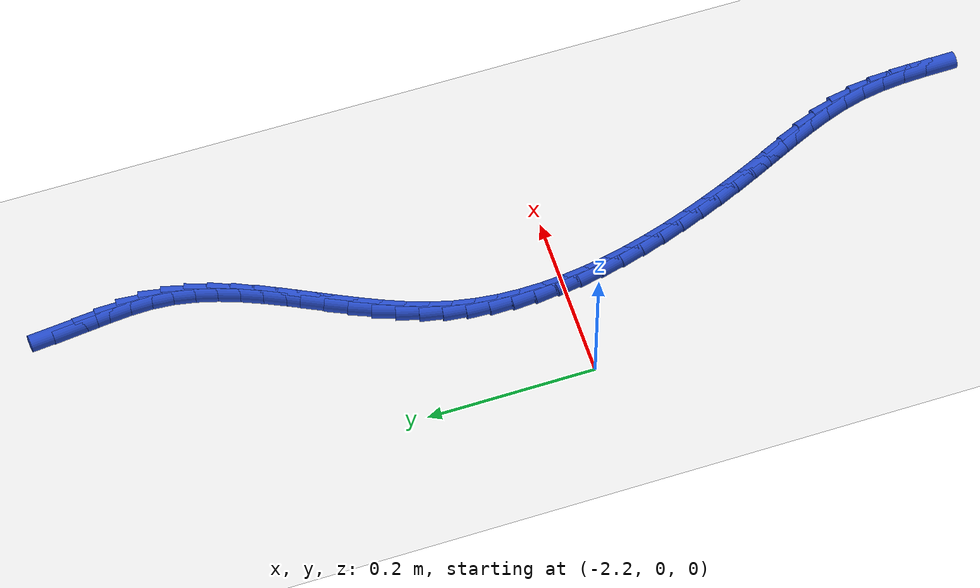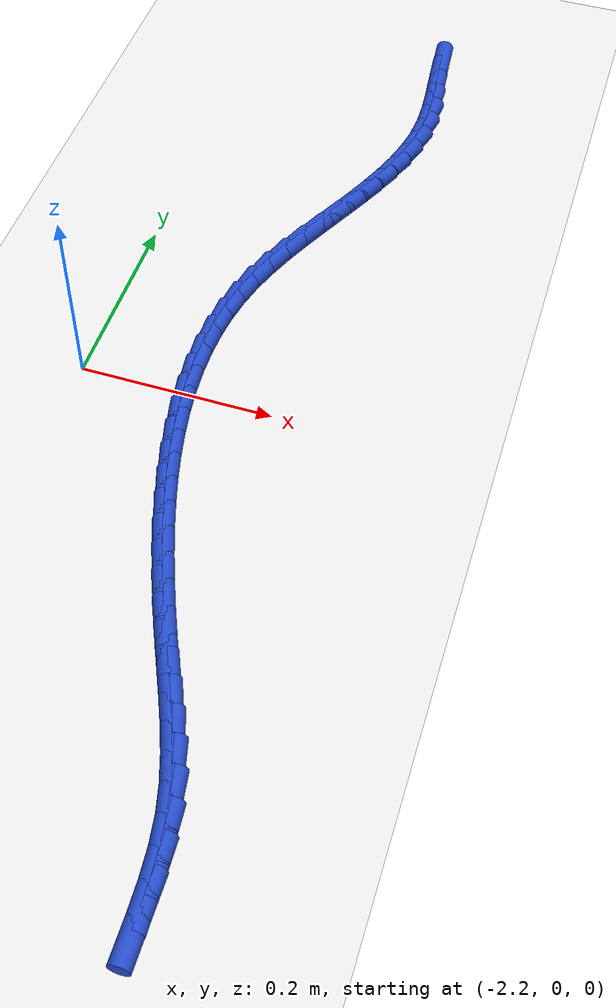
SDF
<sdf version="1.6">
 <world name="default">
  <model name="ground_plane">
   <static>1</static>
   <link name="link">
    <collision name="collision">
     <geometry><plane><normal>0 0 1</normal><size>100 100</size></plane></geometry>
     <surface><friction><ode><mu>100</mu><mu2>50</mu2></ode></friction></surface>
    </collision>
    <visual name="visual">
     <cast_shadows>0</cast_shadows>
     <geometry><plane><normal>0 0 1</normal><size>100 100</size></plane></geometry>
     <material>
      <script><uri>file://media/materials/scripts/gazebo.material</uri><name>Gazebo/WhiteGlow</name></script>
     </material>
    </visual>
   </link>
  </model>
  <model name="line">
   <link name="link_105">
    <pose>-1.972126575137175 0.5634461739848984 0.01 0 1.57 -1.4766376823583705</pose>
    <collision name="collision">
     <geometry><cylinder><radius>0.01</radius><length>0.08</length></cylinder></geometry>
    </collision>
    <visual name="visual">
     <material>
      <script><name>Gazebo/Blue</name><uri>file://media/materials/scripts/gazebo.material</uri></script>
     </material>
     <geometry><cylinder><radius>0.01</radius><length>0.08</length></cylinder></geometry>
    </visual>
   </link>
   <link name="link_106">
    <pose>-1.969586155695155 0.536545751230666 0.01 0 1.57 -1.463341233029052</pose>
    <collision name="collision">
     <geometry><cylinder><radius>0.01</radius><length>0.08</length></cylinder></geometry>
    </collision>
    <visual name="visual">
     <material>
      <script><name>Gazebo/Blue</name><uri>file://media/materials/scripts/gazebo.material</uri></script>
     </material>
     <geometry><cylinder><radius>0.01</radius><length>0.08</length></cylinder></geometry>
    </visual>
   </link>
   <link name="link_107">
    <pose>-1.966704726462525 0.5098338444102422 0.01 0 1.57 -1.4873361292145753</pose>
    <collision name="collision">
     <geometry><cylinder><radius>0.01</radius><length>0.08</length></cylinder></geometry>
    </collision>
    <visual name="visual">
     <material>
      <script><name>Gazebo/Blue</name><uri>file://media/materials/scripts/gazebo.material</uri></script>
     </material>
     <geometry><cylinder><radius>0.01</radius><length>0.08</length></cylinder></geometry>
    </visual>
   </link>
   <link name="link_108">
    <pose>-1.9644908859567793 0.4833697581110783 0.01 0 1.57 -1.5502443384897453</pose>
    <collision name="collision">
     <geometry><cylinder><radius>0.01</radius><length>0.08</length></cylinder></geometry>
    </collision>
    <visual name="visual">
     <material>
      <script><name>Gazebo/Blue</name><uri>file://media/materials/scripts/gazebo.material</uri></script>
     </material>
     <geometry><cylinder><radius>0.01</radius><length>0.08</length></cylinder></geometry>
    </visual>
   </link>
   <link name="link_109">
    <pose>-1.9639532326954114 0.4572127969206257 0.01 0 1.57 1.4909429421851164</pose>
    <collision name="collision">
     <geometry><cylinder><radius>0.01</radius><length>0.08</length></cylinder></geometry>
    </collision>
    <visual name="visual">
     <material>
      <script><name>Gazebo/Blue</name><uri>file://media/materials/scripts/gazebo.material</uri></script>
     </material>
     <geometry><cylinder><radius>0.01</radius><length>0.08</length></cylinder></geometry>
    </visual>
   </link>
   <link name="link_110">
    <pose>-1.966017637361005 0.4314153323083927 0.01 0 1.57 1.3863802636688096</pose>
    <collision name="collision">
     <geometry><cylinder><radius>0.01</radius><length>0.08</length></cylinder></geometry>
    </collision>
    <visual name="visual">
     <material>
      <script><name>Gazebo/Blue</name><uri>file://media/materials/scripts/gazebo.material</uri></script>
     </material>
     <geometry><cylinder><radius>0.01</radius><length>0.08</length></cylinder></geometry>
    </visual>
   </link>
   <link name="link_111">
    <pose>-1.9707661442307725 0.4059590177322481 0.01 0 1.57 1.2988009181703235</pose>
    <collision name="collision">
     <geometry><cylinder><radius>0.01</radius><length>0.08</length></cylinder></geometry>
    </collision>
    <visual name="visual">
     <material>
      <script><name>Gazebo/Blue</name><uri>file://media/materials/scripts/gazebo.material</uri></script>
     </material>
     <geometry><cylinder><radius>0.01</radius><length>0.08</length></cylinder></geometry>
    </visual>
   </link>
   <link name="link_112">
    <pose>-1.9777875989397111 0.380784173471698 0.01 0 1.57 1.2290147500700848</pose>
    <collision name="collision">
     <geometry><cylinder><radius>0.01</radius><length>0.08</length></cylinder></geometry>
    </collision>
    <visual name="visual">
     <material>
      <script><name>Gazebo/Blue</name><uri>file://media/materials/scripts/gazebo.material</uri></script>
     </material>
     <geometry><cylinder><radius>0.01</radius><length>0.08</length></cylinder></geometry>
    </visual>
   </link>
   <link name="link_113">
    <pose>-1.986664649140867 0.3558306003759999 0.01 0 1.57 1.1765179317224823</pose>
    <collision name="collision">
     <geometry><cylinder><radius>0.01</radius><length>0.08</length></cylinder></geometry>
    </collision>
    <visual name="visual">
     <material>
      <script><name>Gazebo/Blue</name><uri>file://media/materials/scripts/gazebo.material</uri></script>
     </material>
     <geometry><cylinder><radius>0.01</radius><length>0.08</length></cylinder></geometry>
    </visual>
   </link>
   <link name="link_114">
    <pose>-1.996979942487287 0.3310380992944109 0.01 0 1.57 1.1403920417455826</pose>
    <collision name="collision">
     <geometry><cylinder><radius>0.01</radius><length>0.08</length></cylinder></geometry>
    </collision>
    <visual name="visual">
     <material>
      <script><name>Gazebo/Blue</name><uri>file://media/materials/scripts/gazebo.material</uri></script>
     </material>
     <geometry><cylinder><radius>0.01</radius><length>0.08</length></cylinder></geometry>
    </visual>
   </link>
   <link name="link_115">
    <pose>-2.0083161266320175 0.30634647107618845 0.01 0 1.57 1.1197458430355571</pose>
    <collision name="collision">
     <geometry><cylinder><radius>0.01</radius><length>0.08</length></cylinder></geometry>
    </collision>
    <visual name="visual">
     <material>
      <script><name>Gazebo/Blue</name><uri>file://media/materials/scripts/gazebo.material</uri></script>
     </material>
     <geometry><cylinder><radius>0.01</radius><length>0.08</length></cylinder></geometry>
    </visual>
   </link>
   <link name="link_116">
    <pose>-2.0202558492281044 0.2816955165705896 0.01 0 1.57 1.1139598028272653</pose>
    <collision name="collision">
     <geometry><cylinder><radius>0.01</radius><length>0.08</length></cylinder></geometry>
    </collision>
    <visual name="visual">
     <material>
      <script><name>Gazebo/Blue</name><uri>file://media/materials/scripts/gazebo.material</uri></script>
     </material>
     <geometry><cylinder><radius>0.01</radius><length>0.08</length></cylinder></geometry>
    </visual>
   </link>
   <link name="link_117">
    <pose>-2.032381757928595 0.25702503662687193 0.01 0 1.57 1.1227955757157324</pose>
    <collision name="collision">
     <geometry><cylinder><radius>0.01</radius><length>0.08</length></cylinder></geometry>
    </collision>
    <visual name="visual">
     <material>
      <script><name>Gazebo/Blue</name><uri>file://media/materials/scripts/gazebo.material</uri></script>
     </material>
     <geometry><cylinder><radius>0.01</radius><length>0.08</length></cylinder></geometry>
    </visual>
   </link>
   <link name="link_118">
    <pose>-2.0442765003865357 0.2322748320942925 0.01 0 1.57 1.146417703029097</pose>
    <collision name="collision">
     <geometry><cylinder><radius>0.01</radius><length>0.08</length></cylinder></geometry>
    </collision>
    <visual name="visual">
     <material>
      <script><name>Gazebo/Blue</name><uri>file://media/materials/scripts/gazebo.material</uri></script>
     </material>
     <geometry><cylinder><radius>0.01</radius><length>0.08</length></cylinder></geometry>
    </visual>
   </link>
   <link name="link_119">
    <pose>-2.055522724254973 0.2073847038221088 0.01 0 1.57 1.1853434662528035</pose>
    <collision name="collision">
     <geometry><cylinder><radius>0.01</radius><length>0.08</length></cylinder></geometry>
    </collision>
    <visual name="visual">
     <material>
      <script><name>Gazebo/Blue</name><uri>file://media/materials/scripts/gazebo.material</uri></script>
     </material>
     <geometry><cylinder><radius>0.01</radius><length>0.08</length></cylinder></geometry>
    </visual>
   </link>
   <link name="link_120">
    <pose>-2.065703077186954 0.1822944526595784 0.01 0 1.57 1.240304687643264</pose>
    <collision name="collision">
     <geometry><cylinder><radius>0.01</radius><length>0.08</length></cylinder></geometry>
    </collision>
    <visual name="visual">
     <material>
      <script><name>Gazebo/Blue</name><uri>file://media/materials/scripts/gazebo.material</uri></script>
     </material>
     <geometry><cylinder><radius>0.01</radius><length>0.08</length></cylinder></geometry>
    </visual>
   </link>
   <link name="link_121">
    <pose>-2.0744002068355236 0.15694387945595775 0.01 0 1.57 1.3112004455252069</pose>
    <collision name="collision">
     <geometry><cylinder><radius>0.01</radius><length>0.08</length></cylinder></geometry>
    </collision>
    <visual name="visual">
     <material>
      <script><name>Gazebo/Blue</name><uri>file://media/materials/scripts/gazebo.material</uri></script>
     </material>
     <geometry><cylinder><radius>0.01</radius><length>0.08</length></cylinder></geometry>
    </visual>
   </link>
   <link name="link_122">
    <pose>-2.0812170602623006 0.13127694017367592 0.01 0 1.57 1.3870124953090317</pose>
    <collision name="collision">
     <geometry><cylinder><radius>0.01</radius><length>0.08</length></cylinder></geometry>
    </collision>
    <visual name="visual">
     <material>
      <script><name>Gazebo/Blue</name><uri>file://media/materials/scripts/gazebo.material</uri></script>
     </material>
     <geometry><cylinder><radius>0.01</radius><length>0.08</length></cylinder></geometry>
    </visual>
   </link>
   <link name="link_123">
    <pose>-2.0860462681362177 0.105296886501343 0.01 0 1.57 1.4588586472775016</pose>
    <collision name="collision">
     <geometry><cylinder><radius>0.01</radius><length>0.08</length></cylinder></geometry>
    </collision>
    <visual name="visual">
     <material>
      <script><name>Gazebo/Blue</name><uri>file://media/materials/scripts/gazebo.material</uri></script>
     </material>
     <geometry><cylinder><radius>0.01</radius><length>0.08</length></cylinder></geometry>
    </visual>
   </link>
   <link name="link_124">
    <pose>-2.088996483141281 0.07905118796361965 0.01 0 1.57 1.5260447786841456</pose>
    <collision name="collision">
     <geometry><cylinder><radius>0.01</radius><length>0.08</length></cylinder></geometry>
    </collision>
    <visual name="visual">
     <material>
      <script><name>Gazebo/Blue</name><uri>file://media/materials/scripts/gazebo.material</uri></script>
     </material>
     <geometry><cylinder><radius>0.01</radius><length>0.08</length></cylinder></geometry>
    </visual>
   </link>
   <link name="link_125">
    <pose>-2.0901815263242196 0.05258837200426572 0.01 0 1.57 -1.5532884285122743</pose>
    <collision name="collision">
     <geometry><cylinder><radius>0.01</radius><length>0.08</length></cylinder></geometry>
    </collision>
    <visual name="visual">
     <material>
      <script><name>Gazebo/Blue</name><uri>file://media/materials/scripts/gazebo.material</uri></script>
     </material>
     <geometry><cylinder><radius>0.01</radius><length>0.08</length></cylinder></geometry>
    </visual>
   </link>
   <link name="link_126">
    <pose>-2.089715218731762 0.025956966067041162 0.01 0 1.57 -1.4960302578766238</pose>
    <collision name="collision">
     <geometry><cylinder><radius>0.01</radius><length>0.08</length></cylinder></geometry>
    </collision>
    <visual name="visual">
     <material>
      <script><name>Gazebo/Blue</name><uri>file://media/materials/scripts/gazebo.material</uri></script>
     </material>
     <geometry><cylinder><radius>0.01</radius><length>0.08</length></cylinder></geometry>
    </visual>
   </link>
   <link name="link_127">
    <pose>-2.0877113814106383 -0.0007945024042941657 0.01 0 1.57 -1.4437012806284384</pose>
    <collision name="collision">
     <geometry><cylinder><radius>0.01</radius><length>0.08</length></cylinder></geometry>
    </collision>
    <visual name="visual">
     <material>
      <script><name>Gazebo/Blue</name><uri>file://media/materials/scripts/gazebo.material</uri></script>
     </material>
     <geometry><cylinder><radius>0.01</radius><length>0.08</length></cylinder></geometry>
    </visual>
   </link>
   <link name="link_128">
    <pose>-2.0842838354075783 -0.02761750596598025 0.01 0 1.57 -1.396127659010064</pose>
    <collision name="collision">
     <geometry><cylinder><radius>0.01</radius><length>0.08</length></cylinder></geometry>
    </collision>
    <visual name="visual">
     <material>
      <script><name>Gazebo/Blue</name><uri>file://media/materials/scripts/gazebo.material</uri></script>
     </material>
     <geometry><cylinder><radius>0.01</radius><length>0.08</length></cylinder></geometry>
    </visual>
   </link>
   <link name="link_129">
    <pose>-2.079546401769311 -0.054463517174257264 0.01 0 1.57 -1.3530730052619449</pose>
    <collision name="collision">
     <geometry><cylinder><radius>0.01</radius><length>0.08</length></cylinder></geometry>
    </collision>
    <visual name="visual">
     <material>
      <script><name>Gazebo/Blue</name><uri>file://media/materials/scripts/gazebo.material</uri></script>
     </material>
     <geometry><cylinder><radius>0.01</radius><length>0.08</length></cylinder></geometry>
    </visual>
   </link>
   <link name="link_130">
    <pose>-2.0736129015425653 -0.08128400858536523 0.01 0 1.57 -1.3142697443693327</pose>
    <collision name="collision">
     <geometry><cylinder><radius>0.01</radius><length>0.08</length></cylinder></geometry>
    </collision>
    <visual name="visual">
     <material>
      <script><name>Gazebo/Blue</name><uri>file://media/materials/scripts/gazebo.material</uri></script>
     </material>
     <geometry><cylinder><radius>0.01</radius><length>0.08</length></cylinder></geometry>
    </visual>
   </link>
   <link name="link_131">
    <pose>-2.0665971557740717 -0.10803045275554425 0.01 0 1.57 -1.279442587890929</pose>
    <collision name="collision">
     <geometry><cylinder><radius>0.01</radius><length>0.08</length></cylinder></geometry>
    </collision>
    <visual name="visual">
     <material>
      <script><name>Gazebo/Blue</name><uri>file://media/materials/scripts/gazebo.material</uri></script>
     </material>
     <geometry><cylinder><radius>0.01</radius><length>0.08</length></cylinder></geometry>
    </visual>
   </link>
   <link name="link_132">
    <pose>-2.058612985510559 -0.13465432224103438 0.01 0 1.57 -1.2483251842517729</pose>
    <collision name="collision">
     <geometry><cylinder><radius>0.01</radius><length>0.08</length></cylinder></geometry>
    </collision>
    <visual name="visual">
     <material>
      <script><name>Gazebo/Blue</name><uri>file://media/materials/scripts/gazebo.material</uri></script>
     </material>
     <geometry><cylinder><radius>0.01</radius><length>0.08</length></cylinder></geometry>
    </visual>
   </link>
   <link name="link_133">
    <pose>-2.0497742117987574 -0.16110708959807574 0.01 0 1.57 -1.2206714253664104</pose>
    <collision name="collision">
     <geometry><cylinder><radius>0.01</radius><length>0.08</length></cylinder></geometry>
    </collision>
    <visual name="visual">
     <material>
      <script><name>Gazebo/Blue</name><uri>file://media/materials/scripts/gazebo.material</uri></script>
     </material>
     <geometry><cylinder><radius>0.01</radius><length>0.08</length></cylinder></geometry>
    </visual>
   </link>
   <link name="link_134">
    <pose>-2.040194655685396 -0.18734022738290831 0.01 0 1.57 -1.196262898542294</pose>
    <collision name="collision">
     <geometry><cylinder><radius>0.01</radius><length>0.08</length></cylinder></geometry>
    </collision>
    <visual name="visual">
     <material>
      <script><name>Gazebo/Blue</name><uri>file://media/materials/scripts/gazebo.material</uri></script>
     </material>
     <geometry><cylinder><radius>0.01</radius><length>0.08</length></cylinder></geometry>
    </visual>
   </link>
   <link name="link_135">
    <pose>-2.029988138217204 -0.21330520815177229 0.01 0 1.57 -1.1749137964867191</pose>
    <collision name="collision">
     <geometry><cylinder><radius>0.01</radius><length>0.08</length></cylinder></geometry>
    </collision>
    <visual name="visual">
     <material>
      <script><name>Gazebo/Blue</name><uri>file://media/materials/scripts/gazebo.material</uri></script>
     </material>
     <geometry><cylinder><radius>0.01</radius><length>0.08</length></cylinder></geometry>
    </visual>
   </link>
   <link name="link_136">
    <pose>-2.019268480440911 -0.23895350446090768 0.01 0 1.57 -1.1564743741800951</pose>
    <collision name="collision">
     <geometry><cylinder><radius>0.01</radius><length>0.08</length></cylinder></geometry>
    </collision>
    <visual name="visual">
     <material>
      <script><name>Gazebo/Blue</name><uri>file://media/materials/scripts/gazebo.material</uri></script>
     </material>
     <geometry><cylinder><radius>0.01</radius><length>0.08</length></cylinder></geometry>
    </visual>
   </link>
   <link name="link_137">
    <pose>-2.008149503403246 -0.2642365888665546 0.01 0 1.57 -1.1411392839726164</pose>
    <collision name="collision">
     <geometry><cylinder><radius>0.01</radius><length>0.08</length></cylinder></geometry>
    </collision>
    <visual name="visual">
     <material>
      <script><name>Gazebo/Blue</name><uri>file://media/materials/scripts/gazebo.material</uri></script>
     </material>
     <geometry><cylinder><radius>0.01</radius><length>0.08</length></cylinder></geometry>
    </visual>
   </link>
   <link name="link_138">
    <pose>-1.996751698519259 -0.2891114376827091 0.01 0 1.57 -1.1366784991546846</pose>
    <collision name="collision">
     <geometry><cylinder><radius>0.01</radius><length>0.08</length></cylinder></geometry>
    </collision>
    <visual name="visual">
     <material>
      <script><name>Gazebo/Blue</name><uri>file://media/materials/scripts/gazebo.material</uri></script>
     </material>
     <geometry><cylinder><radius>0.01</radius><length>0.08</length></cylinder></geometry>
    </visual>
   </link>
   <link name="link_139">
    <pose>-1.9853640980253695 -0.3136740911863197 0.01 0 1.57 -1.1517115401646998</pose>
    <collision name="collision">
     <geometry><cylinder><radius>0.01</radius><length>0.08</length></cylinder></geometry>
    </collision>
    <visual name="visual">
     <material>
      <script><name>Gazebo/Blue</name><uri>file://media/materials/scripts/gazebo.material</uri></script>
     </material>
     <geometry><cylinder><radius>0.01</radius><length>0.08</length></cylinder></geometry>
    </visual>
   </link>
   <link name="link_140">
    <pose>-1.974453130642954 -0.33816696047424394 0.01 0 1.57 -1.187132617524499</pose>
    <collision name="collision">
     <geometry><cylinder><radius>0.01</radius><length>0.08</length></cylinder></geometry>
    </collision>
    <visual name="visual">
     <material>
      <script><name>Gazebo/Blue</name><uri>file://media/materials/scripts/gazebo.material</uri></script>
     </material>
     <geometry><cylinder><radius>0.01</radius><length>0.08</length></cylinder></geometry>
    </visual>
   </link>
   <link name="link_141">
    <pose>-1.9644936680505498 -0.3628394229739404 0.01 0 1.57 -1.2431078560557478</pose>
    <collision name="collision">
     <geometry><cylinder><radius>0.01</radius><length>0.08</length></cylinder></geometry>
    </collision>
    <visual name="visual">
     <material>
      <script><name>Gazebo/Blue</name><uri>file://media/materials/scripts/gazebo.material</uri></script>
     </material>
     <geometry><cylinder><radius>0.01</radius><length>0.08</length></cylinder></geometry>
    </visual>
   </link>
   <link name="link_142">
    <pose>-1.955960581926693 -0.3879408561128672 0.01 0 1.57 -1.3190062506188285</pose>
    <collision name="collision">
     <geometry><cylinder><radius>0.01</radius><length>0.08</length></cylinder></geometry>
    </collision>
    <visual name="visual">
     <material>
      <script><name>Gazebo/Blue</name><uri>file://media/materials/scripts/gazebo.material</uri></script>
     </material>
     <geometry><cylinder><radius>0.01</radius><length>0.08</length></cylinder></geometry>
    </visual>
   </link>
   <link name="link_143">
    <pose>-1.9493287439499198 -0.413720637318483 0.01 0 1.57 -1.4086393210988288</pose>
    <collision name="collision">
     <geometry><cylinder><radius>0.01</radius><length>0.08</length></cylinder></geometry>
    </collision>
    <visual name="visual">
     <material>
      <script><name>Gazebo/Blue</name><uri>file://media/materials/scripts/gazebo.material</uri></script>
     </material>
     <geometry><cylinder><radius>0.01</radius><length>0.08</length></cylinder></geometry>
    </visual>
   </link>
   <link name="link_144">
    <pose>-1.9449681343345515 -0.4403758030218337 0.01 0 1.57 -1.483057330162528</pose>
    <collision name="collision">
     <geometry><cylinder><radius>0.01</radius><length>0.08</length></cylinder></geometry>
    </collision>
    <visual name="visual">
     <material>
      <script><name>Gazebo/Blue</name><uri>file://media/materials/scripts/gazebo.material</uri></script>
     </material>
     <geometry><cylinder><radius>0.01</radius><length>0.08</length></cylinder></geometry>
    </visual>
   </link>
   <link name="link_145">
    <pose>-1.942559342304205 -0.4677593825258204 0.01 0 1.57 -1.532910571129108</pose>
    <collision name="collision">
     <geometry><cylinder><radius>0.01</radius><length>0.08</length></cylinder></geometry>
    </collision>
    <visual name="visual">
     <material>
      <script><name>Gazebo/Blue</name><uri>file://media/materials/scripts/gazebo.material</uri></script>
     </material>
     <geometry><cylinder><radius>0.01</radius><length>0.08</length></cylinder></geometry>
    </visual>
   </link>
   <link name="link_146">
    <pose>-1.941504623528177 -0.49558551627640096 0.01 0 1.57 -1.5601055651761322</pose>
    <collision name="collision">
     <geometry><cylinder><radius>0.01</radius><length>0.08</length></cylinder></geometry>
    </collision>
    <visual name="visual">
     <material>
      <script><name>Gazebo/Blue</name><uri>file://media/materials/scripts/gazebo.material</uri></script>
     </material>
     <geometry><cylinder><radius>0.01</radius><length>0.08</length></cylinder></geometry>
    </visual>
   </link>
  </model>
 </world>
</sdf>
